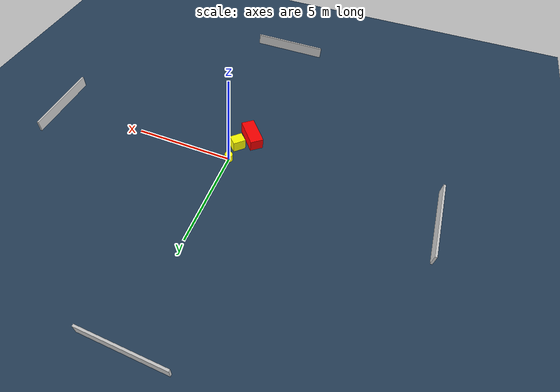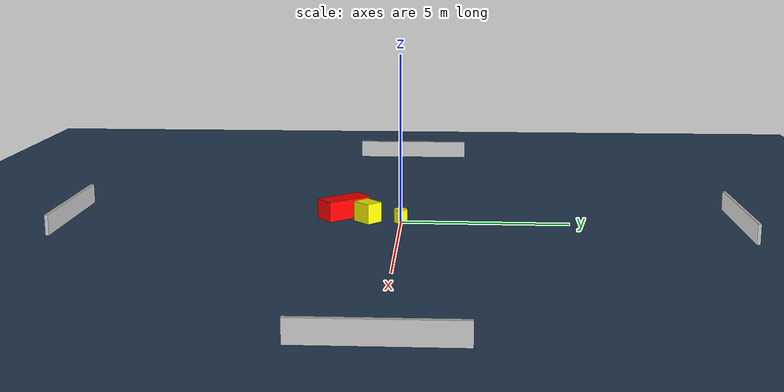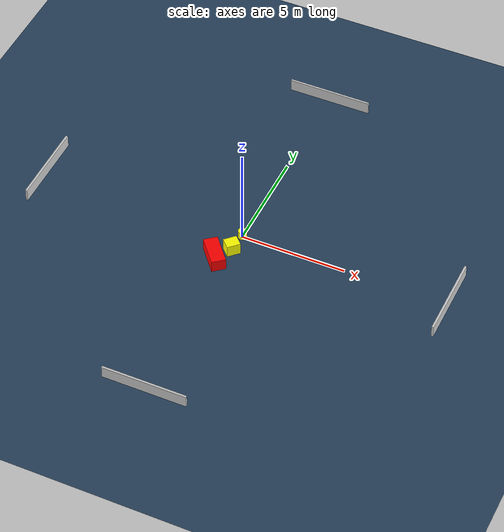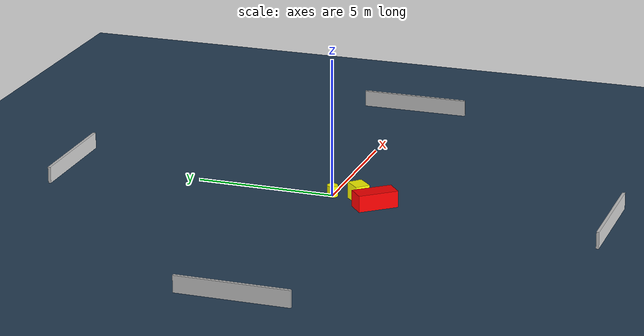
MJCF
<?xml version="1.0" ?>
<mujoco model="generated_environment">
  <option timestep="0.01" integrator="RK4" cone="elliptic"/>
  <default>
    <geom density="1"/>
  </default>
  <asset>
    <texture builtin="gradient" height="3072" name="skybox" rgb1="0.3 0.5 0.7" rgb2="0 0 0" type="skybox" width="512"/>
    <texture builtin="checker" height="300" name="groundplane" rgb1="0.2 0.3 0.4" rgb2="0.1 0.2 0.3" type="2d" width="300"/>
    <material name="groundplane" reflectance="0.2" texrepeat="5 5" texture="groundplane"/>
  </asset>
  <worldbody>
    <light dir="0 0 -1" directional="true" pos="0 0 1.5"/>
    <geom condim="3" friction="0.5 0.005 0.001" material="groundplane" name="floor" pos="0 0 0" size="0 0 0.05" type="plane"/>
    <body name="walls">
      <geom name="wall_1" condim="4" pos="-10.0 0.0 0.3" rgba="0.800000011920929 0.800000011920929 0.800000011920929 1.0" size="0.05 2.0 0.3" type="box"/>
      <geom name="wall_2" condim="4" pos="10.0 0.0 0.3" rgba="0.800000011920929 0.800000011920929 0.800000011920929 1.0" size="0.05 2.0 0.3" type="box"/>
      <geom name="wall_3" condim="4" pos="0.0 -10.0 0.3" rgba="0.800000011920929 0.800000011920929 0.800000011920929 1.0" size="2.0 0.05 0.3" type="box"/>
      <geom name="wall_4" condim="4" pos="0.0 10.0 0.3" rgba="0.800000011920929 0.800000011920929 0.800000011920929 1.0" size="2.0 0.05 0.3" type="box"/>
    </body>
    <body name="robot">
      <joint name="joint_x" type="slide" pos="0 0 0" axis="1 0 0"/>
      <joint name="joint_y" type="slide" pos="0 0 0" axis="0 1 0"/>
      <geom name="robot" type="cylinder" pos="0.0 0.0 0.2" size="0.2 0.2 0.0" mass="5.0" friction="1.0 0.005 0.0001" condim="4" rgba="1.0 1.0 0.0 1.0"/>
    </body>
    <body name="obstacle_1_movable">
      <geom name="obstacle_1_movable" condim="4" pos="-0.0724933896047153 -0.9906067911289573 0.3" euler="0 0 314.96628200484935" friction="0.0 0.005 0.001" rgba="1.0 1.0 0.0 1.0" size="0.26932354916648393 0.32458935807371875 0.3" type="box" mass="0.1"/>
      <joint type="free"/>
    </body>
    <body name="obstacle_2_static">
      <geom name="obstacle_2_static" condim="4" pos="-0.5735636014543319 -1.752976086260299 0.3" euler="0 0 309.77997800503" friction="0.0 0.005 0.001" rgba="1.0 0.0 0.0 1.0" size="0.7340317399986589 0.33503594617302723 0.3" type="box"/>
    </body>
  </worldbody>
  <actuator>
    <motor name="actuator_x" joint="joint_x" gear="1" ctrlrange="-1 1"/>
    <motor name="actuator_y" joint="joint_y" gear="1" ctrlrange="-1 1"/>
  </actuator>
</mujoco>
